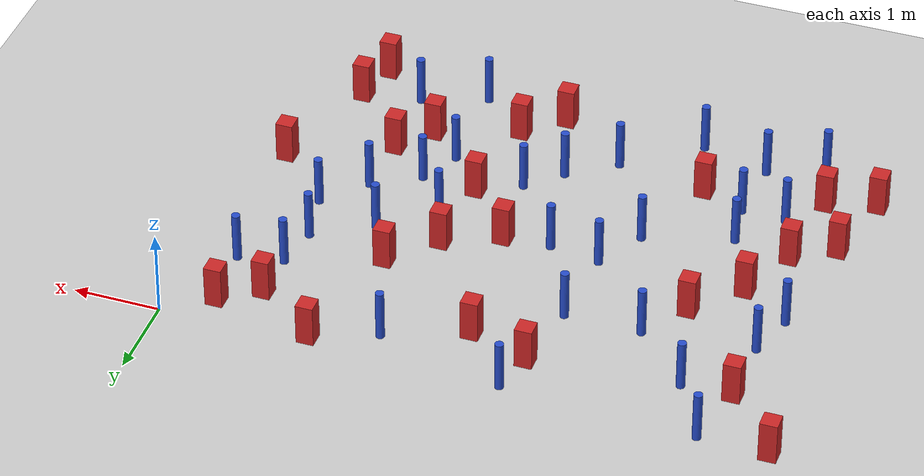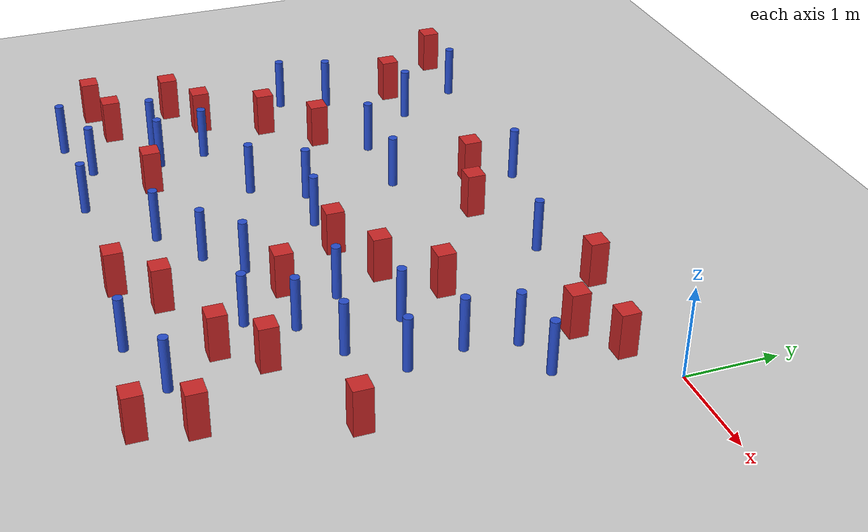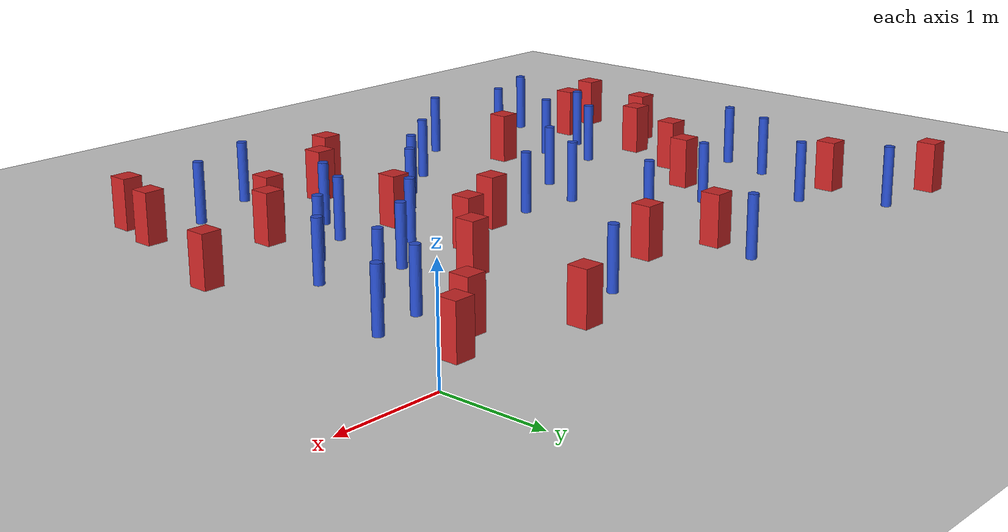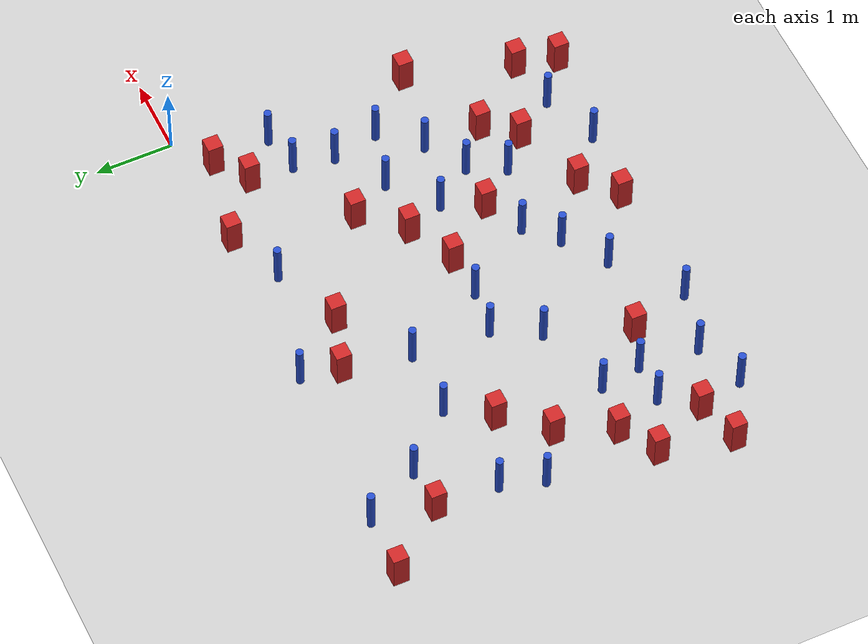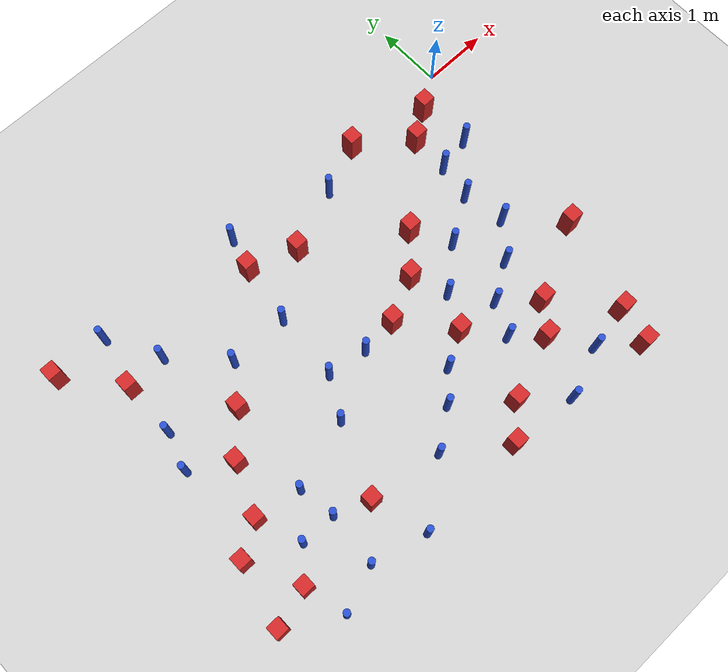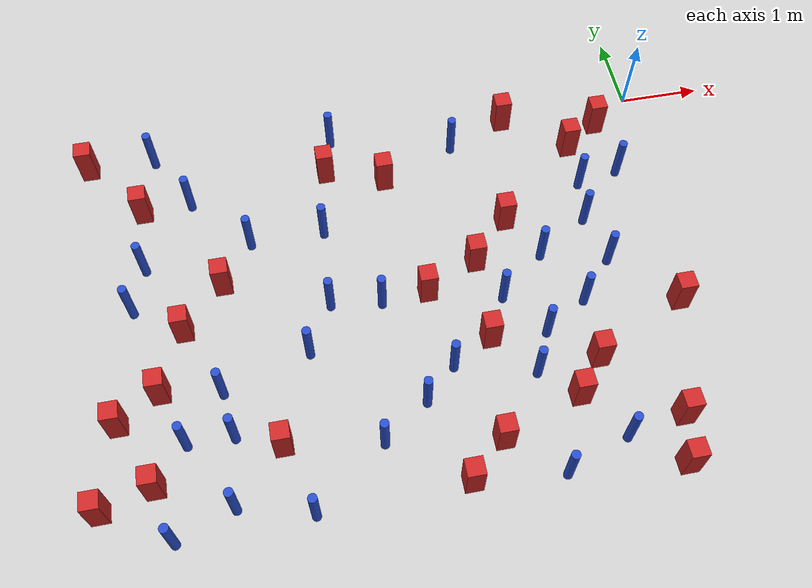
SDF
<sdf version="1.6">
 <world name="default">
  <model name="ground_plane">
   <static>1</static>
   <link name="link">
    <collision name="collision">
     <geometry><plane><normal>0 0 1</normal><size>100 100</size></plane></geometry>
     <surface><friction><ode><mu>100</mu><mu2>50</mu2></ode></friction></surface>
    </collision>
    <visual name="visual">
     <cast_shadows>0</cast_shadows>
     <geometry><plane><normal>0 0 1</normal><size>100 100</size></plane></geometry>
     <material>
      <ambient>1.0 1.0 1.0 1.0</ambient>
      <diffuse>0.8 0.8 0.8 1.0</diffuse>
      <specular>0.01 0.01 0.01 1.000000</specular>
     </material>
    </visual>
   </link>
  </model>
  <model name="square_post_obstacle1">
   <static>true</static>
   <pose>-3.35054210867 -0.736798338395 8.22691968438e-08 7.2212513382e-06 -7.54495500217e-07 2.29674213826e-05</pose>
   <link name="link">
    <pose>0 0 0.25 0 -0 0</pose>
    <inertial>
     <mass>100</mass>
     <inertia>
      <ixx>0.166667</ixx>
      <ixy>0</ixy>
      <ixz>0</ixz>
      <iyy>0.166667</iyy>
      <iyz>0</iyz>
      <izz>0.166667</izz>
     </inertia>
    </inertial>
    <collision name="collision"><geometry><box><size>.2 .2 .5</size></box></geometry></collision>
    <visual name="visual">
     <geometry><box><size>.2 .2 .5</size></box></geometry>
     <material>
      <script><name>Gazebo/Red</name><uri>file://media/materials/scripts/gazebo.material</uri></script>
     </material>
    </visual>
   </link>
  </model>
  <model name="pole_obstacle8">
   <static>true</static>
   <pose>-2.28974647122 -2.63171756062 2.88873142074e-08 -9.90536690232e-09 4.6021994898e-07 -1.20965994968e-07</pose>
   <link name="link">
    <pose>0 0 0.3 0 -0 0</pose>
    <inertial>
     <mass>1</mass>
     <inertia><ixx>0.145833</ixx><ixy>0</ixy><ixz>0</ixz><iyy>0.145833</iyy><iyz>0</iyz><izz>0.125</izz></inertia>
    </inertial>
    <collision name="collision">
     <geometry><cylinder><radius>0.05</radius><length>.6</length></cylinder></geometry>
    </collision>
    <visual name="visual">
     <geometry><cylinder><radius>0.05</radius><length>.6</length></cylinder></geometry>
     <material>
      <script><name>Gazebo/Blue</name><uri>file://media/materials/scripts/gazebo.material</uri></script>
     </material>
    </visual>
   </link>
  </model>
  <model name="pole_obstacle11">
   <static>true</static>
   <pose>-1.38419072896 -4.5300421405 2.88873142074e-08 -9.90536689852e-09 4.60219948989e-07 -1.2096599496e-07</pose>
   <link name="link">
    <pose>0 0 0.3 0 -0 0</pose>
    <inertial>
     <mass>1</mass>
     <inertia><ixx>0.145833</ixx><ixy>0</ixy><ixz>0</ixz><iyy>0.145833</iyy><iyz>0</iyz><izz>0.125</izz></inertia>
    </inertial>
    <collision name="collision">
     <geometry><cylinder><radius>0.05</radius><length>.6</length></cylinder></geometry>
    </collision>
    <visual name="visual">
     <geometry><cylinder><radius>0.05</radius><length>.6</length></cylinder></geometry>
     <material>
      <script><name>Gazebo/Blue</name><uri>file://media/materials/scripts/gazebo.material</uri></script>
     </material>
    </visual>
   </link>
  </model>
  <model name="square_post_obstacle8">
   <static>true</static>
   <pose>-2.02314259595 -1.59735954357 8.22691968438e-08 7.2212513382e-06 -7.54495500217e-07 2.29674213826e-05</pose>
   <link name="link">
    <pose>0 0 0.25 0 -0 0</pose>
    <inertial>
     <mass>100</mass>
     <inertia>
      <ixx>0.166667</ixx>
      <ixy>0</ixy>
      <ixz>0</ixz>
      <iyy>0.166667</iyy>
      <iyz>0</iyz>
      <izz>0.166667</izz>
     </inertia>
    </inertial>
    <collision name="collision"><geometry><box><size>.2 .2 .5</size></box></geometry></collision>
    <visual name="visual">
     <geometry><box><size>.2 .2 .5</size></box></geometry>
     <material>
      <script><name>Gazebo/Red</name><uri>file://media/materials/scripts/gazebo.material</uri></script>
     </material>
    </visual>
   </link>
  </model>
  <model name="square_post_obstacle14">
   <static>true</static>
   <pose>-1.42556165094 -3.57427515595 8.22691968438e-08 7.2212513382e-06 -7.54495500217e-07 2.29674213826e-05</pose>
   <link name="link">
    <pose>0 0 0.25 0 -0 0</pose>
    <inertial>
     <mass>100</mass>
     <inertia>
      <ixx>0.166667</ixx>
      <ixy>0</ixy>
      <ixz>0</ixz>
      <iyy>0.166667</iyy>
      <iyz>0</iyz>
      <izz>0.166667</izz>
     </inertia>
    </inertial>
    <collision name="collision"><geometry><box><size>.2 .2 .5</size></box></geometry></collision>
    <visual name="visual">
     <geometry><box><size>.2 .2 .5</size></box></geometry>
     <material>
      <script><name>Gazebo/Red</name><uri>file://media/materials/scripts/gazebo.material</uri></script>
     </material>
    </visual>
   </link>
  </model>
  <model name="pole_obstacle19">
   <static>true</static>
   <pose>-3.91891887837 -0.00871485491137 2.88873142074e-08 -9.90536691065e-09 4.6021994896e-07 -1.20965994981e-07</pose>
   <link name="link">
    <pose>0 0 0.3 0 -0 0</pose>
    <inertial>
     <mass>1</mass>
     <inertia><ixx>0.145833</ixx><ixy>0</ixy><ixz>0</ixz><iyy>0.145833</iyy><iyz>0</iyz><izz>0.125</izz></inertia>
    </inertial>
    <collision name="collision">
     <geometry><cylinder><radius>0.05</radius><length>.6</length></cylinder></geometry>
    </collision>
    <visual name="visual">
     <geometry><cylinder><radius>0.05</radius><length>.6</length></cylinder></geometry>
     <material>
      <script><name>Gazebo/Blue</name><uri>file://media/materials/scripts/gazebo.material</uri></script>
     </material>
    </visual>
   </link>
  </model>
  <model name="pole_obstacle25">
   <static>true</static>
   <pose>-6.49594713914 -2.04775443947 2.88873142074e-08 -9.90536689749e-09 4.60219948991e-07 -1.20965994959e-07</pose>
   <link name="link">
    <pose>0 0 0.3 0 -0 0</pose>
    <inertial>
     <mass>1</mass>
     <inertia><ixx>0.145833</ixx><ixy>0</ixy><ixz>0</ixz><iyy>0.145833</iyy><iyz>0</iyz><izz>0.125</izz></inertia>
    </inertial>
    <collision name="collision">
     <geometry><cylinder><radius>0.05</radius><length>.6</length></cylinder></geometry>
    </collision>
    <visual name="visual">
     <geometry><cylinder><radius>0.05</radius><length>.6</length></cylinder></geometry>
     <material>
      <script><name>Gazebo/Blue</name><uri>file://media/materials/scripts/gazebo.material</uri></script>
     </material>
    </visual>
   </link>
  </model>
  <model name="pole_obstacle28">
   <static>true</static>
   <pose>-5.73384834355 -0.667830797117 2.88873142074e-08 -9.90536689837e-09 4.60219948989e-07 -1.2096599496e-07</pose>
   <link name="link">
    <pose>0 0 0.3 0 -0 0</pose>
    <inertial>
     <mass>1</mass>
     <inertia><ixx>0.145833</ixx><ixy>0</ixy><ixz>0</ixz><iyy>0.145833</iyy><iyz>0</iyz><izz>0.125</izz></inertia>
    </inertial>
    <collision name="collision">
     <geometry><cylinder><radius>0.05</radius><length>.6</length></cylinder></geometry>
    </collision>
    <visual name="visual">
     <geometry><cylinder><radius>0.05</radius><length>.6</length></cylinder></geometry>
     <material>
      <script><name>Gazebo/Blue</name><uri>file://media/materials/scripts/gazebo.material</uri></script>
     </material>
    </visual>
   </link>
  </model>
  <model name="square_post_obstacle19">
   <static>true</static>
   <pose>-6.31097158691 -0.686327371586 8.22691968438e-08 7.2212513382e-06 -7.54495500217e-07 2.29674213826e-05</pose>
   <link name="link">
    <pose>0 0 0.25 0 -0 0</pose>
    <inertial>
     <mass>100</mass>
     <inertia>
      <ixx>0.166667</ixx>
      <ixy>0</ixy>
      <ixz>0</ixz>
      <iyy>0.166667</iyy>
      <iyz>0</iyz>
      <izz>0.166667</izz>
     </inertia>
    </inertial>
    <collision name="collision"><geometry><box><size>.2 .2 .5</size></box></geometry></collision>
    <visual name="visual">
     <geometry><box><size>.2 .2 .5</size></box></geometry>
     <material>
      <script><name>Gazebo/Red</name><uri>file://media/materials/scripts/gazebo.material</uri></script>
     </material>
    </visual>
   </link>
  </model>
  <model name="square_post_obstacle22">
   <static>true</static>
   <pose>-0.724402223427 -4.40228746088 8.22691968438e-08 7.2212513382e-06 -7.54495500217e-07 2.29674213826e-05</pose>
   <link name="link">
    <pose>0 0 0.25 0 -0 0</pose>
    <inertial>
     <mass>100</mass>
     <inertia>
      <ixx>0.166667</ixx>
      <ixy>0</ixy>
      <ixz>0</ixz>
      <iyy>0.166667</iyy>
      <iyz>0</iyz>
      <izz>0.166667</izz>
     </inertia>
    </inertial>
    <collision name="collision"><geometry><box><size>.2 .2 .5</size></box></geometry></collision>
    <visual name="visual">
     <geometry><box><size>.2 .2 .5</size></box></geometry>
     <material>
      <script><name>Gazebo/Red</name><uri>file://media/materials/scripts/gazebo.material</uri></script>
     </material>
    </visual>
   </link>
  </model>
  <model name="pole_obstacle35">
   <static>true</static>
   <pose>-3.40290456589 -3.74607418104 2.88873142074e-08 -9.90536689597e-09 4.60219948995e-07 -1.20965994957e-07</pose>
   <link name="link">
    <pose>0 0 0.3 0 -0 0</pose>
    <inertial>
     <mass>1</mass>
     <inertia><ixx>0.145833</ixx><ixy>0</ixy><ixz>0</ixz><iyy>0.145833</iyy><iyz>0</iyz><izz>0.125</izz></inertia>
    </inertial>
    <collision name="collision">
     <geometry><cylinder><radius>0.05</radius><length>.6</length></cylinder></geometry>
    </collision>
    <visual name="visual">
     <geometry><cylinder><radius>0.05</radius><length>.6</length></cylinder></geometry>
     <material>
      <script><name>Gazebo/Blue</name><uri>file://media/materials/scripts/gazebo.material</uri></script>
     </material>
    </visual>
   </link>
  </model>
  <model name="pole_obstacle39">
   <static>true</static>
   <pose>-6.14041552199 0.0737043032614 2.88873142074e-08 -9.90536689222e-09 4.60219949004e-07 -1.20965994951e-07</pose>
   <link name="link">
    <pose>0 0 0.3 0 -0 0</pose>
    <inertial>
     <mass>1</mass>
     <inertia><ixx>0.145833</ixx><ixy>0</ixy><ixz>0</ixz><iyy>0.145833</iyy><iyz>0</iyz><izz>0.125</izz></inertia>
    </inertial>
    <collision name="collision">
     <geometry><cylinder><radius>0.05</radius><length>.6</length></cylinder></geometry>
    </collision>
    <visual name="visual">
     <geometry><cylinder><radius>0.05</radius><length>.6</length></cylinder></geometry>
     <material>
      <script><name>Gazebo/Blue</name><uri>file://media/materials/scripts/gazebo.material</uri></script>
     </material>
    </visual>
   </link>
  </model>
  <model name="pole_obstacle50">
   <static>true</static>
   <pose>-4.19444305447 -1.36607023959 2.88873142074e-08 -9.90536689445e-09 4.60219948999e-07 -1.20965994956e-07</pose>
   <link name="link">
    <pose>0 0 0.3 0 -0 0</pose>
    <inertial>
     <mass>1</mass>
     <inertia><ixx>0.145833</ixx><ixy>0</ixy><ixz>0</ixz><iyy>0.145833</iyy><iyz>0</iyz><izz>0.125</izz></inertia>
    </inertial>
    <collision name="collision">
     <geometry><cylinder><radius>0.05</radius><length>.6</length></cylinder></geometry>
    </collision>
    <visual name="visual">
     <geometry><cylinder><radius>0.05</radius><length>.6</length></cylinder></geometry>
     <material>
      <script><name>Gazebo/Blue</name><uri>file://media/materials/scripts/gazebo.material</uri></script>
     </material>
    </visual>
   </link>
  </model>
  <model name="square_post_obstacle41">
   <static>true</static>
   <pose>-3.11937832484 -4.70375750924 8.22691968438e-08 7.22125133819e-06 -7.54495500217e-07 2.29674213826e-05</pose>
   <link name="link">
    <pose>0 0 0.25 0 -0 0</pose>
    <inertial>
     <mass>100</mass>
     <inertia>
      <ixx>0.166667</ixx>
      <ixy>0</ixy>
      <ixz>0</ixz>
      <iyy>0.166667</iyy>
      <iyz>0</iyz>
      <izz>0.166667</izz>
     </inertia>
    </inertial>
    <collision name="collision"><geometry><box><size>.2 .2 .5</size></box></geometry></collision>
    <visual name="visual">
     <geometry><box><size>.2 .2 .5</size></box></geometry>
     <material>
      <script><name>Gazebo/Red</name><uri>file://media/materials/scripts/gazebo.material</uri></script>
     </material>
    </visual>
   </link>
  </model>
  <model name="square_post_obstacle42">
   <static>true</static>
   <pose>-4.99449107915 -3.95878369442 8.22691968438e-08 7.22125133819e-06 -7.54495500217e-07 2.29674213826e-05</pose>
   <link name="link">
    <pose>0 0 0.25 0 -0 0</pose>
    <inertial>
     <mass>100</mass>
     <inertia>
      <ixx>0.166667</ixx>
      <ixy>0</ixy>
      <ixz>0</ixz>
      <iyy>0.166667</iyy>
      <iyz>0</iyz>
      <izz>0.166667</izz>
     </inertia>
    </inertial>
    <collision name="collision"><geometry><box><size>.2 .2 .5</size></box></geometry></collision>
    <visual name="visual">
     <geometry><box><size>.2 .2 .5</size></box></geometry>
     <material>
      <script><name>Gazebo/Red</name><uri>file://media/materials/scripts/gazebo.material</uri></script>
     </material>
    </visual>
   </link>
  </model>
  <model name="pole_obstacle56">
   <static>true</static>
   <pose>-6.00105610432 -3.76208218845 2.88873142074e-08 -9.90536690245e-09 4.6021994898e-07 -1.20965994966e-07</pose>
   <link name="link">
    <pose>0 0 0.3 0 -0 0</pose>
    <inertial>
     <mass>1</mass>
     <inertia><ixx>0.145833</ixx><ixy>0</ixy><ixz>0</ixz><iyy>0.145833</iyy><iyz>0</iyz><izz>0.125</izz></inertia>
    </inertial>
    <collision name="collision">
     <geometry><cylinder><radius>0.05</radius><length>.6</length></cylinder></geometry>
    </collision>
    <visual name="visual">
     <geometry><cylinder><radius>0.05</radius><length>.6</length></cylinder></geometry>
     <material>
      <script><name>Gazebo/Blue</name><uri>file://media/materials/scripts/gazebo.material</uri></script>
     </material>
    </visual>
   </link>
  </model>
  <model name="square_post_obstacle50">
   <static>true</static>
   <pose>-5.4458712194 -1.87812994958 8.22691968438e-08 7.2212513382e-06 -7.54495500217e-07 2.29674213826e-05</pose>
   <link name="link">
    <pose>0 0 0.25 0 -0 0</pose>
    <inertial>
     <mass>100</mass>
     <inertia>
      <ixx>0.166667</ixx>
      <ixy>0</ixy>
      <ixz>0</ixz>
      <iyy>0.166667</iyy>
      <iyz>0</iyz>
      <izz>0.166667</izz>
     </inertia>
    </inertial>
    <collision name="collision"><geometry><box><size>.2 .2 .5</size></box></geometry></collision>
    <visual name="visual">
     <geometry><box><size>.2 .2 .5</size></box></geometry>
     <material>
      <script><name>Gazebo/Red</name><uri>file://media/materials/scripts/gazebo.material</uri></script>
     </material>
    </visual>
   </link>
  </model>
  <model name="square_post_obstacle55">
   <static>true</static>
   <pose>-1.75901744162 -3.97708110841 8.22691968438e-08 7.22125133819e-06 -7.54495500217e-07 2.29674213826e-05</pose>
   <link name="link">
    <pose>0 0 0.25 0 -0 0</pose>
    <inertial>
     <mass>100</mass>
     <inertia>
      <ixx>0.166667</ixx>
      <ixy>0</ixy>
      <ixz>0</ixz>
      <iyy>0.166667</iyy>
      <iyz>0</iyz>
      <izz>0.166667</izz>
     </inertia>
    </inertial>
    <collision name="collision"><geometry><box><size>.2 .2 .5</size></box></geometry></collision>
    <visual name="visual">
     <geometry><box><size>.2 .2 .5</size></box></geometry>
     <material>
      <script><name>Gazebo/Red</name><uri>file://media/materials/scripts/gazebo.material</uri></script>
     </material>
    </visual>
   </link>
  </model>
  <model name="square_post_obstacle61">
   <static>true</static>
   <pose>-0.306263322913 -3.03843182342 8.22691968438e-08 7.2212513382e-06 -7.54495500217e-07 2.29674213826e-05</pose>
   <link name="link">
    <pose>0 0 0.25 0 -0 0</pose>
    <inertial>
     <mass>100</mass>
     <inertia>
      <ixx>0.166667</ixx>
      <ixy>0</ixy>
      <ixz>0</ixz>
      <iyy>0.166667</iyy>
      <iyz>0</iyz>
      <izz>0.166667</izz>
     </inertia>
    </inertial>
    <collision name="collision"><geometry><box><size>.2 .2 .5</size></box></geometry></collision>
    <visual name="visual">
     <geometry><box><size>.2 .2 .5</size></box></geometry>
     <material>
      <script><name>Gazebo/Red</name><uri>file://media/materials/scripts/gazebo.material</uri></script>
     </material>
    </visual>
   </link>
  </model>
  <model name="pole_obstacle74">
   <static>true</static>
   <pose>-2.12235625767 -4.80559405233 2.88873142074e-08 -9.90536689859e-09 4.60219948989e-07 -1.20965994961e-07</pose>
   <link name="link">
    <pose>0 0 0.3 0 -0 0</pose>
    <inertial>
     <mass>1</mass>
     <inertia><ixx>0.145833</ixx><ixy>0</ixy><ixz>0</ixz><iyy>0.145833</iyy><iyz>0</iyz><izz>0.125</izz></inertia>
    </inertial>
    <collision name="collision">
     <geometry><cylinder><radius>0.05</radius><length>.6</length></cylinder></geometry>
    </collision>
    <visual name="visual">
     <geometry><cylinder><radius>0.05</radius><length>.6</length></cylinder></geometry>
     <material>
      <script><name>Gazebo/Blue</name><uri>file://media/materials/scripts/gazebo.material</uri></script>
     </material>
    </visual>
   </link>
  </model>
  <model name="pole_obstacle75">
   <static>true</static>
   <pose>-1.37995118022 -2.8402983033 2.88873142074e-08 -9.90536689791e-09 4.6021994899e-07 -1.20965994959e-07</pose>
   <link name="link">
    <pose>0 0 0.3 0 -0 0</pose>
    <inertial>
     <mass>1</mass>
     <inertia><ixx>0.145833</ixx><ixy>0</ixy><ixz>0</ixz><iyy>0.145833</iyy><iyz>0</iyz><izz>0.125</izz></inertia>
    </inertial>
    <collision name="collision">
     <geometry><cylinder><radius>0.05</radius><length>.6</length></cylinder></geometry>
    </collision>
    <visual name="visual">
     <geometry><cylinder><radius>0.05</radius><length>.6</length></cylinder></geometry>
     <material>
      <script><name>Gazebo/Blue</name><uri>file://media/materials/scripts/gazebo.material</uri></script>
     </material>
    </visual>
   </link>
  </model>
  <model name="square_post_obstacle68">
   <static>true</static>
   <pose>-6.93920617958 0.0949451980479 8.22691968438e-08 7.22125133819e-06 -7.54495500217e-07 2.29674213826e-05</pose>
   <link name="link">
    <pose>0 0 0.25 0 -0 0</pose>
    <inertial>
     <mass>100</mass>
     <inertia>
      <ixx>0.166667</ixx>
      <ixy>0</ixy>
      <ixz>0</ixz>
      <iyy>0.166667</iyy>
      <iyz>0</iyz>
      <izz>0.166667</izz>
     </inertia>
    </inertial>
    <collision name="collision"><geometry><box><size>.2 .2 .5</size></box></geometry></collision>
    <visual name="visual">
     <geometry><box><size>.2 .2 .5</size></box></geometry>
     <material>
      <script><name>Gazebo/Red</name><uri>file://media/materials/scripts/gazebo.material</uri></script>
     </material>
    </visual>
   </link>
  </model>
  <model name="square_post_obstacle74">
   <static>true</static>
   <pose>-4.04884845433 -0.491943824063 8.22691968438e-08 7.2212513382e-06 -7.54495500217e-07 2.29674213826e-05</pose>
   <link name="link">
    <pose>0 0 0.25 0 -0 0</pose>
    <inertial>
     <mass>100</mass>
     <inertia>
      <ixx>0.166667</ixx>
      <ixy>0</ixy>
      <ixz>0</ixz>
      <iyy>0.166667</iyy>
      <iyz>0</iyz>
      <izz>0.166667</izz>
     </inertia>
    </inertial>
    <collision name="collision"><geometry><box><size>.2 .2 .5</size></box></geometry></collision>
    <visual name="visual">
     <geometry><box><size>.2 .2 .5</size></box></geometry>
     <material>
      <script><name>Gazebo/Red</name><uri>file://media/materials/scripts/gazebo.material</uri></script>
     </material>
    </visual>
   </link>
  </model>
  <model name="square_post_obstacle82">
   <static>true</static>
   <pose>-0.861315098195 -4.92922673165 8.22691968438e-08 7.22125133819e-06 -7.54495500217e-07 2.29674213826e-05</pose>
   <link name="link">
    <pose>0 0 0.25 0 -0 0</pose>
    <inertial>
     <mass>100</mass>
     <inertia>
      <ixx>0.166667</ixx>
      <ixy>0</ixy>
      <ixz>0</ixz>
      <iyy>0.166667</iyy>
      <iyz>0</iyz>
      <izz>0.166667</izz>
     </inertia>
    </inertial>
    <collision name="collision"><geometry><box><size>.2 .2 .5</size></box></geometry></collision>
    <visual name="visual">
     <geometry><box><size>.2 .2 .5</size></box></geometry>
     <material>
      <script><name>Gazebo/Red</name><uri>file://media/materials/scripts/gazebo.material</uri></script>
     </material>
    </visual>
   </link>
  </model>
  <model name="pole_obstacle92">
   <static>true</static>
   <pose>-2.13639956047 -3.62703696184 2.88873142074e-08 -9.90536690232e-09 4.6021994898e-07 -1.20965994968e-07</pose>
   <link name="link">
    <pose>0 0 0.3 0 -0 0</pose>
    <inertial>
     <mass>1</mass>
     <inertia><ixx>0.145833</ixx><ixy>0</ixy><ixz>0</ixz><iyy>0.145833</iyy><iyz>0</iyz><izz>0.125</izz></inertia>
    </inertial>
    <collision name="collision">
     <geometry><cylinder><radius>0.05</radius><length>.6</length></cylinder></geometry>
    </collision>
    <visual name="visual">
     <geometry><cylinder><radius>0.05</radius><length>.6</length></cylinder></geometry>
     <material>
      <script><name>Gazebo/Blue</name><uri>file://media/materials/scripts/gazebo.material</uri></script>
     </material>
    </visual>
   </link>
  </model>
  <model name="square_post_obstacle87">
   <static>true</static>
   <pose>-6.91724910143 -4.33223253423 8.22691968438e-08 7.2212513382e-06 -7.54495500217e-07 2.29674213826e-05</pose>
   <link name="link">
    <pose>0 0 0.25 0 -0 0</pose>
    <inertial>
     <mass>100</mass>
     <inertia>
      <ixx>0.166667</ixx>
      <ixy>0</ixy>
      <ixz>0</ixz>
      <iyy>0.166667</iyy>
      <iyz>0</iyz>
      <izz>0.166667</izz>
     </inertia>
    </inertial>
    <collision name="collision"><geometry><box><size>.2 .2 .5</size></box></geometry></collision>
    <visual name="visual">
     <geometry><box><size>.2 .2 .5</size></box></geometry>
     <material>
      <script><name>Gazebo/Red</name><uri>file://media/materials/scripts/gazebo.material</uri></script>
     </material>
    </visual>
   </link>
  </model>
  <model name="pole_obstacle102">
   <static>true</static>
   <pose>-2.42795892452 -0.380992136866 2.88873142074e-08 -9.90536689307e-09 4.60219949002e-07 -1.20965994954e-07</pose>
   <link name="link">
    <pose>0 0 0.3 0 -0 0</pose>
    <inertial>
     <mass>1</mass>
     <inertia><ixx>0.145833</ixx><ixy>0</ixy><ixz>0</ixz><iyy>0.145833</iyy><iyz>0</iyz><izz>0.125</izz></inertia>
    </inertial>
    <collision name="collision">
     <geometry><cylinder><radius>0.05</radius><length>.6</length></cylinder></geometry>
    </collision>
    <visual name="visual">
     <geometry><cylinder><radius>0.05</radius><length>.6</length></cylinder></geometry>
     <material>
      <script><name>Gazebo/Blue</name><uri>file://media/materials/scripts/gazebo.material</uri></script>
     </material>
    </visual>
   </link>
  </model>
  <model name="pole_obstacle113">
   <static>true</static>
   <pose>-3.67171919615 -2.4490359921 2.88873142074e-08 -9.90536690232e-09 4.6021994898e-07 -1.20965994968e-07</pose>
   <link name="link">
    <pose>0 0 0.3 0 -0 0</pose>
    <inertial>
     <mass>1</mass>
     <inertia><ixx>0.145833</ixx><ixy>0</ixy><ixz>0</ixz><iyy>0.145833</iyy><iyz>0</iyz><izz>0.125</izz></inertia>
    </inertial>
    <collision name="collision">
     <geometry><cylinder><radius>0.05</radius><length>.6</length></cylinder></geometry>
    </collision>
    <visual name="visual">
     <geometry><cylinder><radius>0.05</radius><length>.6</length></cylinder></geometry>
     <material>
      <script><name>Gazebo/Blue</name><uri>file://media/materials/scripts/gazebo.material</uri></script>
     </material>
    </visual>
   </link>
  </model>
  <model name="square_post_obstacle115">
   <static>true</static>
   <pose>-6.23688760859 -3.12087339624 8.22691968438e-08 7.2212513382e-06 -7.54495500217e-07 2.29674213826e-05</pose>
   <link name="link">
    <pose>0 0 0.25 0 -0 0</pose>
    <inertial>
     <mass>100</mass>
     <inertia>
      <ixx>0.166667</ixx>
      <ixy>0</ixy>
      <ixz>0</ixz>
      <iyy>0.166667</iyy>
      <iyz>0</iyz>
      <izz>0.166667</izz>
     </inertia>
    </inertial>
    <collision name="collision"><geometry><box><size>.2 .2 .5</size></box></geometry></collision>
    <visual name="visual">
     <geometry><box><size>.2 .2 .5</size></box></geometry>
     <material>
      <script><name>Gazebo/Red</name><uri>file://media/materials/scripts/gazebo.material</uri></script>
     </material>
    </visual>
   </link>
  </model>
  <model name="pole_obstacle124">
   <static>true</static>
   <pose>-0.463806236329 -1.12231233375 2.88873142074e-08 -9.90536689939e-09 4.60219948987e-07 -1.20965994963e-07</pose>
   <link name="link">
    <pose>0 0 0.3 0 -0 0</pose>
    <inertial>
     <mass>1</mass>
     <inertia><ixx>0.145833</ixx><ixy>0</ixy><ixz>0</ixz><iyy>0.145833</iyy><iyz>0</iyz><izz>0.125</izz></inertia>
    </inertial>
    <collision name="collision">
     <geometry><cylinder><radius>0.05</radius><length>.6</length></cylinder></geometry>
    </collision>
    <visual name="visual">
     <geometry><cylinder><radius>0.05</radius><length>.6</length></cylinder></geometry>
     <material>
      <script><name>Gazebo/Blue</name><uri>file://media/materials/scripts/gazebo.material</uri></script>
     </material>
    </visual>
   </link>
  </model>
  <model name="pole_obstacle135">
   <static>true</static>
   <pose>-4.75639364919 -4.75412487937 2.88873142074e-08 -9.90536690842e-09 4.60219948965e-07 -1.20965994976e-07</pose>
   <link name="link">
    <pose>0 0 0.3 0 -0 0</pose>
    <inertial>
     <mass>1</mass>
     <inertia><ixx>0.145833</ixx><ixy>0</ixy><ixz>0</ixz><iyy>0.145833</iyy><iyz>0</iyz><izz>0.125</izz></inertia>
    </inertial>
    <collision name="collision">
     <geometry><cylinder><radius>0.05</radius><length>.6</length></cylinder></geometry>
    </collision>
    <visual name="visual">
     <geometry><cylinder><radius>0.05</radius><length>.6</length></cylinder></geometry>
     <material>
      <script><name>Gazebo/Blue</name><uri>file://media/materials/scripts/gazebo.material</uri></script>
     </material>
    </visual>
   </link>
  </model>
  <model name="pole_obstacle143">
   <static>true</static>
   <pose>-4.57410857033 -2.9325874355 2.88873142074e-08 -9.90536690245e-09 4.6021994898e-07 -1.20965994966e-07</pose>
   <link name="link">
    <pose>0 0 0.3 0 -0 0</pose>
    <inertial>
     <mass>1</mass>
     <inertia><ixx>0.145833</ixx><ixy>0</ixy><ixz>0</ixz><iyy>0.145833</iyy><iyz>0</iyz><izz>0.125</izz></inertia>
    </inertial>
    <collision name="collision">
     <geometry><cylinder><radius>0.05</radius><length>.6</length></cylinder></geometry>
    </collision>
    <visual name="visual">
     <geometry><cylinder><radius>0.05</radius><length>.6</length></cylinder></geometry>
     <material>
      <script><name>Gazebo/Blue</name><uri>file://media/materials/scripts/gazebo.material</uri></script>
     </material>
    </visual>
   </link>
  </model>
  <model name="pole_obstacle147">
   <static>true</static>
   <pose>-0.978974253905 -1.22667080508 2.88873142074e-08 -9.90536689826e-09 4.6021994899e-07 -1.20965994961e-07</pose>
   <link name="link">
    <pose>0 0 0.3 0 -0 0</pose>
    <inertial>
     <mass>1</mass>
     <inertia><ixx>0.145833</ixx><ixy>0</ixy><ixz>0</ixz><iyy>0.145833</iyy><iyz>0</iyz><izz>0.125</izz></inertia>
    </inertial>
    <collision name="collision">
     <geometry><cylinder><radius>0.05</radius><length>.6</length></cylinder></geometry>
    </collision>
    <visual name="visual">
     <geometry><cylinder><radius>0.05</radius><length>.6</length></cylinder></geometry>
     <material>
      <script><name>Gazebo/Blue</name><uri>file://media/materials/scripts/gazebo.material</uri></script>
     </material>
    </visual>
   </link>
  </model>
  <model name="square_post_obstacle141">
   <static>true</static>
   <pose>-3.13210528845 -2.4026798415 8.22691968438e-08 7.2212513382e-06 -7.54495500217e-07 2.29674213826e-05</pose>
   <link name="link">
    <pose>0 0 0.25 0 -0 0</pose>
    <inertial>
     <mass>100</mass>
     <inertia>
      <ixx>0.166667</ixx>
      <ixy>0</ixy>
      <ixz>0</ixz>
      <iyy>0.166667</iyy>
      <iyz>0</iyz>
      <izz>0.166667</izz>
     </inertia>
    </inertial>
    <collision name="collision"><geometry><box><size>.2 .2 .5</size></box></geometry></collision>
    <visual name="visual">
     <geometry><box><size>.2 .2 .5</size></box></geometry>
     <material>
      <script><name>Gazebo/Red</name><uri>file://media/materials/scripts/gazebo.material</uri></script>
     </material>
    </visual>
   </link>
  </model>
  <model name="pole_obstacle152">
   <static>true</static>
   <pose>-6.32846131377 -1.50407365661 2.88873142074e-08 -9.90536689445e-09 4.60219948999e-07 -1.20965994956e-07</pose>
   <link name="link">
    <pose>0 0 0.3 0 -0 0</pose>
    <inertial>
     <mass>1</mass>
     <inertia><ixx>0.145833</ixx><ixy>0</ixy><ixz>0</ixz><iyy>0.145833</iyy><iyz>0</iyz><izz>0.125</izz></inertia>
    </inertial>
    <collision name="collision">
     <geometry><cylinder><radius>0.05</radius><length>.6</length></cylinder></geometry>
    </collision>
    <visual name="visual">
     <geometry><cylinder><radius>0.05</radius><length>.6</length></cylinder></geometry>
     <material>
      <script><name>Gazebo/Blue</name><uri>file://media/materials/scripts/gazebo.material</uri></script>
     </material>
    </visual>
   </link>
  </model>
  <model name="pole_obstacle155">
   <static>true</static>
   <pose>-1.90558491253 -3.1603530864 2.88873142074e-08 -9.90536689791e-09 4.6021994899e-07 -1.20965994959e-07</pose>
   <link name="link">
    <pose>0 0 0.3 0 -0 0</pose>
    <inertial>
     <mass>1</mass>
     <inertia><ixx>0.145833</ixx><ixy>0</ixy><ixz>0</ixz><iyy>0.145833</iyy><iyz>0</iyz><izz>0.125</izz></inertia>
    </inertial>
    <collision name="collision">
     <geometry><cylinder><radius>0.05</radius><length>.6</length></cylinder></geometry>
    </collision>
    <visual name="visual">
     <geometry><cylinder><radius>0.05</radius><length>.6</length></cylinder></geometry>
     <material>
      <script><name>Gazebo/Blue</name><uri>file://media/materials/scripts/gazebo.material</uri></script>
     </material>
    </visual>
   </link>
  </model>
  <model name="pole_obstacle156">
   <static>true</static>
   <pose>-5.55078375375 -4.54211556654 2.88873142074e-08 -9.90536690842e-09 4.60219948965e-07 -1.20965994976e-07</pose>
   <link name="link">
    <pose>0 0 0.3 0 -0 0</pose>
    <inertial>
     <mass>1</mass>
     <inertia><ixx>0.145833</ixx><ixy>0</ixy><ixz>0</ixz><iyy>0.145833</iyy><iyz>0</iyz><izz>0.125</izz></inertia>
    </inertial>
    <collision name="collision">
     <geometry><cylinder><radius>0.05</radius><length>.6</length></cylinder></geometry>
    </collision>
    <visual name="visual">
     <geometry><cylinder><radius>0.05</radius><length>.6</length></cylinder></geometry>
     <material>
      <script><name>Gazebo/Blue</name><uri>file://media/materials/scripts/gazebo.material</uri></script>
     </material>
    </visual>
   </link>
  </model>
  <model name="square_post_obstacle152">
   <static>true</static>
   <pose>-5.93408647971 -2.40738026158 8.22691968438e-08 7.2212513382e-06 -7.54495500217e-07 2.29674213826e-05</pose>
   <link name="link">
    <pose>0 0 0.25 0 -0 0</pose>
    <inertial>
     <mass>100</mass>
     <inertia>
      <ixx>0.166667</ixx>
      <ixy>0</ixy>
      <ixz>0</ixz>
      <iyy>0.166667</iyy>
      <iyz>0</iyz>
      <izz>0.166667</izz>
     </inertia>
    </inertial>
    <collision name="collision"><geometry><box><size>.2 .2 .5</size></box></geometry></collision>
    <visual name="visual">
     <geometry><box><size>.2 .2 .5</size></box></geometry>
     <material>
      <script><name>Gazebo/Red</name><uri>file://media/materials/scripts/gazebo.material</uri></script>
     </material>
    </visual>
   </link>
  </model>
  <model name="pole_obstacle164">
   <static>true</static>
   <pose>-6.18806806261 -4.77774602749 2.88873142074e-08 -9.90536690842e-09 4.60219948965e-07 -1.20965994976e-07</pose>
   <link name="link">
    <pose>0 0 0.3 0 -0 0</pose>
    <inertial>
     <mass>1</mass>
     <inertia><ixx>0.145833</ixx><ixy>0</ixy><ixz>0</ixz><iyy>0.145833</iyy><iyz>0</iyz><izz>0.125</izz></inertia>
    </inertial>
    <collision name="collision">
     <geometry><cylinder><radius>0.05</radius><length>.6</length></cylinder></geometry>
    </collision>
    <visual name="visual">
     <geometry><cylinder><radius>0.05</radius><length>.6</length></cylinder></geometry>
     <material>
      <script><name>Gazebo/Blue</name><uri>file://media/materials/scripts/gazebo.material</uri></script>
     </material>
    </visual>
   </link>
  </model>
  <model name="pole_obstacle169">
   <static>true</static>
   <pose>-3.93540898508 -4.12521932056 2.88873142074e-08 -9.90536689859e-09 4.60219948989e-07 -1.20965994961e-07</pose>
   <link name="link">
    <pose>0 0 0.3 0 -0 0</pose>
    <inertial>
     <mass>1</mass>
     <inertia><ixx>0.145833</ixx><ixy>0</ixy><ixz>0</ixz><iyy>0.145833</iyy><iyz>0</iyz><izz>0.125</izz></inertia>
    </inertial>
    <collision name="collision">
     <geometry><cylinder><radius>0.05</radius><length>.6</length></cylinder></geometry>
    </collision>
    <visual name="visual">
     <geometry><cylinder><radius>0.05</radius><length>.6</length></cylinder></geometry>
     <material>
      <script><name>Gazebo/Blue</name><uri>file://media/materials/scripts/gazebo.material</uri></script>
     </material>
    </visual>
   </link>
  </model>
  <model name="pole_obstacle172">
   <static>true</static>
   <pose>-5.07344633658 -1.36597032883 2.88873142074e-08 -9.90536689445e-09 4.60219948999e-07 -1.20965994956e-07</pose>
   <link name="link">
    <pose>0 0 0.3 0 -0 0</pose>
    <inertial>
     <mass>1</mass>
     <inertia><ixx>0.145833</ixx><ixy>0</ixy><ixz>0</ixz><iyy>0.145833</iyy><iyz>0</iyz><izz>0.125</izz></inertia>
    </inertial>
    <collision name="collision">
     <geometry><cylinder><radius>0.05</radius><length>.6</length></cylinder></geometry>
    </collision>
    <visual name="visual">
     <geometry><cylinder><radius>0.05</radius><length>.6</length></cylinder></geometry>
     <material>
      <script><name>Gazebo/Blue</name><uri>file://media/materials/scripts/gazebo.material</uri></script>
     </material>
    </visual>
   </link>
  </model>
  <model name="pole_obstacle174">
   <static>true</static>
   <pose>-1.07127131974 -1.75477117098 2.88873142074e-08 -9.90536689672e-09 4.60219948993e-07 -1.20965994959e-07</pose>
   <link name="link">
    <pose>0 0 0.3 0 -0 0</pose>
    <inertial>
     <mass>1</mass>
     <inertia><ixx>0.145833</ixx><ixy>0</ixy><ixz>0</ixz><iyy>0.145833</iyy><iyz>0</iyz><izz>0.125</izz></inertia>
    </inertial>
    <collision name="collision">
     <geometry><cylinder><radius>0.05</radius><length>.6</length></cylinder></geometry>
    </collision>
    <visual name="visual">
     <geometry><cylinder><radius>0.05</radius><length>.6</length></cylinder></geometry>
     <material>
      <script><name>Gazebo/Blue</name><uri>file://media/materials/scripts/gazebo.material</uri></script>
     </material>
    </visual>
   </link>
  </model>
  <model name="square_post_obstacle177">
   <static>true</static>
   <pose>-1.70469651387 -0.081892507935 8.22691968438e-08 7.2212513382e-06 -7.54495500217e-07 2.29674213826e-05</pose>
   <link name="link">
    <pose>0 0 0.25 0 -0 0</pose>
    <inertial>
     <mass>100</mass>
     <inertia>
      <ixx>0.166667</ixx>
      <ixy>0</ixy>
      <ixz>0</ixz>
      <iyy>0.166667</iyy>
      <iyz>0</iyz>
      <izz>0.166667</izz>
     </inertia>
    </inertial>
    <collision name="collision"><geometry><box><size>.2 .2 .5</size></box></geometry></collision>
    <visual name="visual">
     <geometry><box><size>.2 .2 .5</size></box></geometry>
     <material>
      <script><name>Gazebo/Red</name><uri>file://media/materials/scripts/gazebo.material</uri></script>
     </material>
    </visual>
   </link>
  </model>
  <model name="square_post_obstacle178">
   <static>true</static>
   <pose>-0.532365024979 -0.350612750066 8.22691968438e-08 7.22125133819e-06 -7.54495500217e-07 2.29674213826e-05</pose>
   <link name="link">
    <pose>0 0 0.25 0 -0 0</pose>
    <inertial>
     <mass>100</mass>
     <inertia>
      <ixx>0.166667</ixx>
      <ixy>0</ixy>
      <ixz>0</ixz>
      <iyy>0.166667</iyy>
      <iyz>0</iyz>
      <izz>0.166667</izz>
     </inertia>
    </inertial>
    <collision name="collision"><geometry><box><size>.2 .2 .5</size></box></geometry></collision>
    <visual name="visual">
     <geometry><box><size>.2 .2 .5</size></box></geometry>
     <material>
      <script><name>Gazebo/Red</name><uri>file://media/materials/scripts/gazebo.material</uri></script>
     </material>
    </visual>
   </link>
  </model>
  <model name="square_post_obstacle181">
   <static>true</static>
   <pose>-2.50234768167 -2.10553576669 8.22691968438e-08 7.2212513382e-06 -7.54495500217e-07 2.29674213826e-05</pose>
   <link name="link">
    <pose>0 0 0.25 0 -0 0</pose>
    <inertial>
     <mass>100</mass>
     <inertia>
      <ixx>0.166667</ixx>
      <ixy>0</ixy>
      <ixz>0</ixz>
      <iyy>0.166667</iyy>
      <iyz>0</iyz>
      <izz>0.166667</izz>
     </inertia>
    </inertial>
    <collision name="collision"><geometry><box><size>.2 .2 .5</size></box></geometry></collision>
    <visual name="visual">
     <geometry><box><size>.2 .2 .5</size></box></geometry>
     <material>
      <script><name>Gazebo/Red</name><uri>file://media/materials/scripts/gazebo.material</uri></script>
     </material>
    </visual>
   </link>
  </model>
  <model name="square_post_obstacle183">
   <static>true</static>
   <pose>-6.7070407622 -3.41318464159 8.22691968438e-08 7.2212513382e-06 -7.54495500217e-07 2.29674213826e-05</pose>
   <link name="link">
    <pose>0 0 0.25 0 -0 0</pose>
    <inertial>
     <mass>100</mass>
     <inertia>
      <ixx>0.166667</ixx>
      <ixy>0</ixy>
      <ixz>0</ixz>
      <iyy>0.166667</iyy>
      <iyz>0</iyz>
      <izz>0.166667</izz>
     </inertia>
    </inertial>
    <collision name="collision"><geometry><box><size>.2 .2 .5</size></box></geometry></collision>
    <visual name="visual">
     <geometry><box><size>.2 .2 .5</size></box></geometry>
     <material>
      <script><name>Gazebo/Red</name><uri>file://media/materials/scripts/gazebo.material</uri></script>
     </material>
    </visual>
   </link>
  </model>
  <model name="square_post_obstacle187">
   <static>true</static>
   <pose>-6.34833343962 -4.17386887576 8.22691968438e-08 7.22125133819e-06 -7.54495500217e-07 2.29674213826e-05</pose>
   <link name="link">
    <pose>0 0 0.25 0 -0 0</pose>
    <inertial>
     <mass>100</mass>
     <inertia>
      <ixx>0.166667</ixx>
      <ixy>0</ixy>
      <ixz>0</ixz>
      <iyy>0.166667</iyy>
      <iyz>0</iyz>
      <izz>0.166667</izz>
     </inertia>
    </inertial>
    <collision name="collision"><geometry><box><size>.2 .2 .5</size></box></geometry></collision>
    <visual name="visual">
     <geometry><box><size>.2 .2 .5</size></box></geometry>
     <material>
      <script><name>Gazebo/Red</name><uri>file://media/materials/scripts/gazebo.material</uri></script>
     </material>
    </visual>
   </link>
  </model>
  <model name="pole_obstacle188">
   <static>true</static>
   <pose>-4.25882314995 -2.36570035124 2.88873142074e-08 -9.90536690245e-09 4.6021994898e-07 -1.20965994966e-07</pose>
   <link name="link">
    <pose>0 0 0.3 0 -0 0</pose>
    <inertial>
     <mass>1</mass>
     <inertia><ixx>0.145833</ixx><ixy>0</ixy><ixz>0</ixz><iyy>0.145833</iyy><iyz>0</iyz><izz>0.125</izz></inertia>
    </inertial>
    <collision name="collision">
     <geometry><cylinder><radius>0.05</radius><length>.6</length></cylinder></geometry>
    </collision>
    <visual name="visual">
     <geometry><cylinder><radius>0.05</radius><length>.6</length></cylinder></geometry>
     <material>
      <script><name>Gazebo/Blue</name><uri>file://media/materials/scripts/gazebo.material</uri></script>
     </material>
    </visual>
   </link>
  </model>
  <model name="pole_obstacle196">
   <static>true</static>
   <pose>-1.71449219077 -2.15231349025 2.88873142074e-08 -9.90536689791e-09 4.6021994899e-07 -1.20965994959e-07</pose>
   <link name="link">
    <pose>0 0 0.3 0 -0 0</pose>
    <inertial>
     <mass>1</mass>
     <inertia><ixx>0.145833</ixx><ixy>0</ixy><ixz>0</ixz><iyy>0.145833</iyy><iyz>0</iyz><izz>0.125</izz></inertia>
    </inertial>
    <collision name="collision">
     <geometry><cylinder><radius>0.05</radius><length>.6</length></cylinder></geometry>
    </collision>
    <visual name="visual">
     <geometry><cylinder><radius>0.05</radius><length>.6</length></cylinder></geometry>
     <material>
      <script><name>Gazebo/Blue</name><uri>file://media/materials/scripts/gazebo.material</uri></script>
     </material>
    </visual>
   </link>
  </model>
  <model name="pole_obstacle198">
   <static>true</static>
   <pose>-0.953180382731 -2.36375899948 2.88873142074e-08 -9.90536689742e-09 4.60219948991e-07 -1.2096599496e-07</pose>
   <link name="link">
    <pose>0 0 0.3 0 -0 0</pose>
    <inertial>
     <mass>1</mass>
     <inertia><ixx>0.145833</ixx><ixy>0</ixy><ixz>0</ixz><iyy>0.145833</iyy><iyz>0</iyz><izz>0.125</izz></inertia>
    </inertial>
    <collision name="collision">
     <geometry><cylinder><radius>0.05</radius><length>.6</length></cylinder></geometry>
    </collision>
    <visual name="visual">
     <geometry><cylinder><radius>0.05</radius><length>.6</length></cylinder></geometry>
     <material>
      <script><name>Gazebo/Blue</name><uri>file://media/materials/scripts/gazebo.material</uri></script>
     </material>
    </visual>
   </link>
  </model>
  <model name="pole_obstacle200">
   <static>true</static>
   <pose>-3.03126800744 -3.38604618474 2.88873142074e-08 -9.90536690232e-09 4.6021994898e-07 -1.20965994968e-07</pose>
   <link name="link">
    <pose>0 0 0.3 0 -0 0</pose>
    <inertial>
     <mass>1</mass>
     <inertia><ixx>0.145833</ixx><ixy>0</ixy><ixz>0</ixz><iyy>0.145833</iyy><iyz>0</iyz><izz>0.125</izz></inertia>
    </inertial>
    <collision name="collision">
     <geometry><cylinder><radius>0.05</radius><length>.6</length></cylinder></geometry>
    </collision>
    <visual name="visual">
     <geometry><cylinder><radius>0.05</radius><length>.6</length></cylinder></geometry>
     <material>
      <script><name>Gazebo/Blue</name><uri>file://media/materials/scripts/gazebo.material</uri></script>
     </material>
    </visual>
   </link>
  </model>
  <model name="pole_obstacle209">
   <static>true</static>
   <pose>-5.4882993271 -3.77214540476 2.88873142074e-08 -9.90536690245e-09 4.6021994898e-07 -1.20965994966e-07</pose>
   <link name="link">
    <pose>0 0 0.3 0 -0 0</pose>
    <inertial>
     <mass>1</mass>
     <inertia><ixx>0.145833</ixx><ixy>0</ixy><ixz>0</ixz><iyy>0.145833</iyy><iyz>0</iyz><izz>0.125</izz></inertia>
    </inertial>
    <collision name="collision">
     <geometry><cylinder><radius>0.05</radius><length>.6</length></cylinder></geometry>
    </collision>
    <visual name="visual">
     <geometry><cylinder><radius>0.05</radius><length>.6</length></cylinder></geometry>
     <material>
      <script><name>Gazebo/Blue</name><uri>file://media/materials/scripts/gazebo.material</uri></script>
     </material>
    </visual>
   </link>
  </model>
  <model name="pole_obstacle212">
   <static>true</static>
   <pose>-5.56913853558 -3.23951742422 2.88873142074e-08 -9.90536690245e-09 4.6021994898e-07 -1.20965994966e-07</pose>
   <link name="link">
    <pose>0 0 0.3 0 -0 0</pose>
    <inertial>
     <mass>1</mass>
     <inertia><ixx>0.145833</ixx><ixy>0</ixy><ixz>0</ixz><iyy>0.145833</iyy><iyz>0</iyz><izz>0.125</izz></inertia>
    </inertial>
    <collision name="collision">
     <geometry><cylinder><radius>0.05</radius><length>.6</length></cylinder></geometry>
    </collision>
    <visual name="visual">
     <geometry><cylinder><radius>0.05</radius><length>.6</length></cylinder></geometry>
     <material>
      <script><name>Gazebo/Blue</name><uri>file://media/materials/scripts/gazebo.material</uri></script>
     </material>
    </visual>
   </link>
  </model>
  <model name="square_post_obstacle217">
   <static>true</static>
   <pose>-0.969109059625 -0.646746559868 8.22691968438e-08 7.2212513382e-06 -7.54495500217e-07 2.29674213826e-05</pose>
   <link name="link">
    <pose>0 0 0.25 0 -0 0</pose>
    <inertial>
     <mass>100</mass>
     <inertia>
      <ixx>0.166667</ixx>
      <ixy>0</ixy>
      <ixz>0</ixz>
      <iyy>0.166667</iyy>
      <iyz>0</iyz>
      <izz>0.166667</izz>
     </inertia>
    </inertial>
    <collision name="collision"><geometry><box><size>.2 .2 .5</size></box></geometry></collision>
    <visual name="visual">
     <geometry><box><size>.2 .2 .5</size></box></geometry>
     <material>
      <script><name>Gazebo/Red</name><uri>file://media/materials/scripts/gazebo.material</uri></script>
     </material>
    </visual>
   </link>
  </model>
  <model name="square_post_obstacle226">
   <static>true</static>
   <pose>-2.55586475853 -3.1171937908 8.22691968438e-08 7.2212513382e-06 -7.54495500217e-07 2.29674213826e-05</pose>
   <link name="link">
    <pose>0 0 0.25 0 -0 0</pose>
    <inertial>
     <mass>100</mass>
     <inertia>
      <ixx>0.166667</ixx>
      <ixy>0</ixy>
      <ixz>0</ixz>
      <iyy>0.166667</iyy>
      <iyz>0</iyz>
      <izz>0.166667</izz>
     </inertia>
    </inertial>
    <collision name="collision"><geometry><box><size>.2 .2 .5</size></box></geometry></collision>
    <visual name="visual">
     <geometry><box><size>.2 .2 .5</size></box></geometry>
     <material>
      <script><name>Gazebo/Red</name><uri>file://media/materials/scripts/gazebo.material</uri></script>
     </material>
    </visual>
   </link>
  </model>
  <model name="square_post_obstacle231">
   <static>true</static>
   <pose>-2.69107873927 -4.31241232831 8.22691968438e-08 7.2212513382e-06 -7.54495500217e-07 2.29674213826e-05</pose>
   <link name="link">
    <pose>0 0 0.25 0 -0 0</pose>
    <inertial>
     <mass>100</mass>
     <inertia>
      <ixx>0.166667</ixx>
      <ixy>0</ixy>
      <ixz>0</ixz>
      <iyy>0.166667</iyy>
      <iyz>0</iyz>
      <izz>0.166667</izz>
     </inertia>
    </inertial>
    <collision name="collision"><geometry><box><size>.2 .2 .5</size></box></geometry></collision>
    <visual name="visual">
     <geometry><box><size>.2 .2 .5</size></box></geometry>
     <material>
      <script><name>Gazebo/Red</name><uri>file://media/materials/scripts/gazebo.material</uri></script>
     </material>
    </visual>
   </link>
  </model>
 </world>
</sdf>
